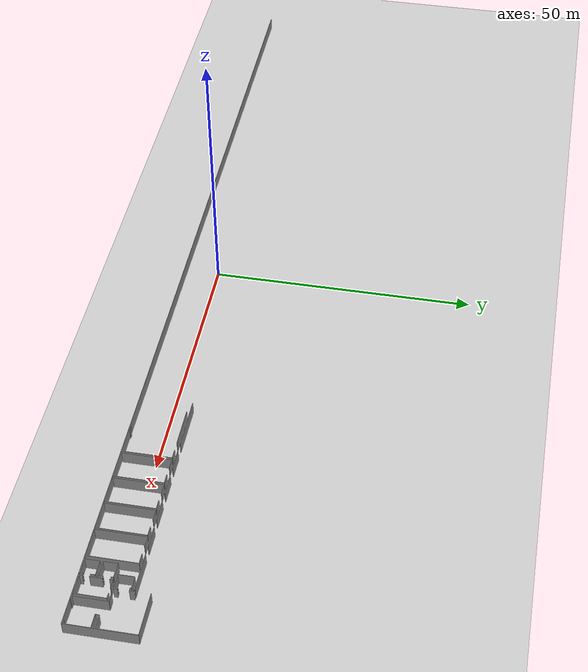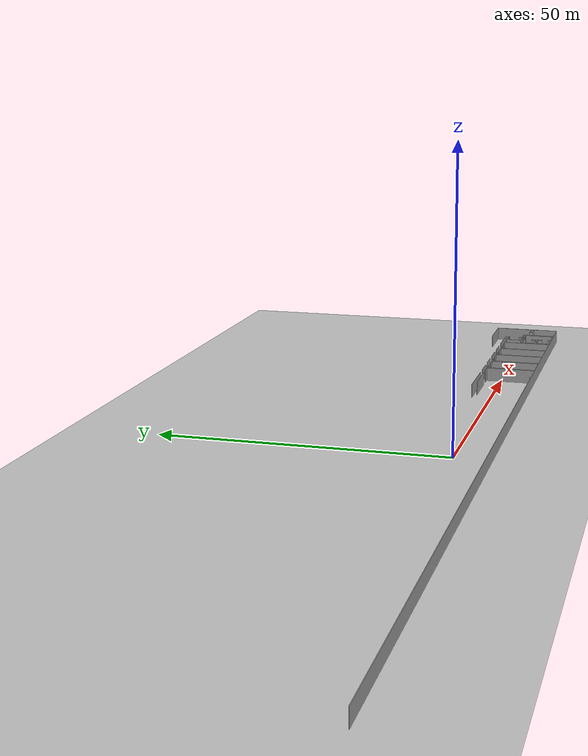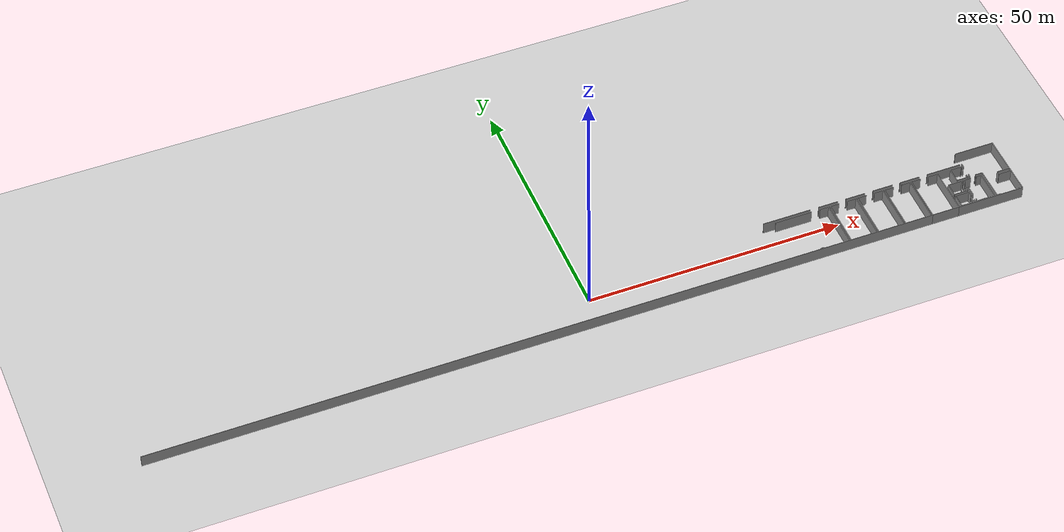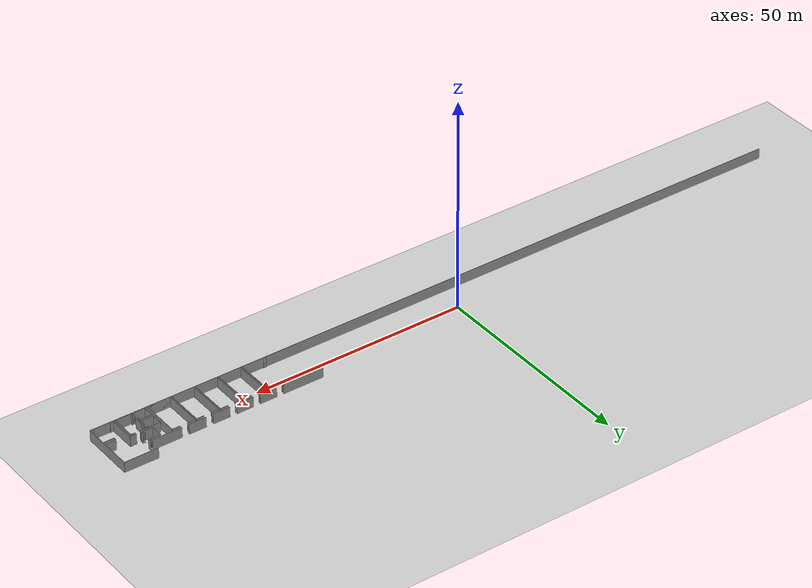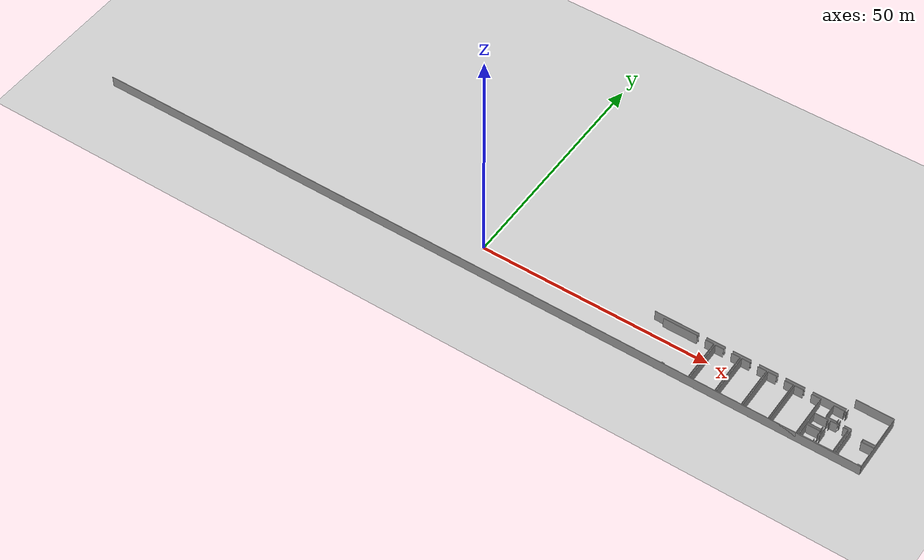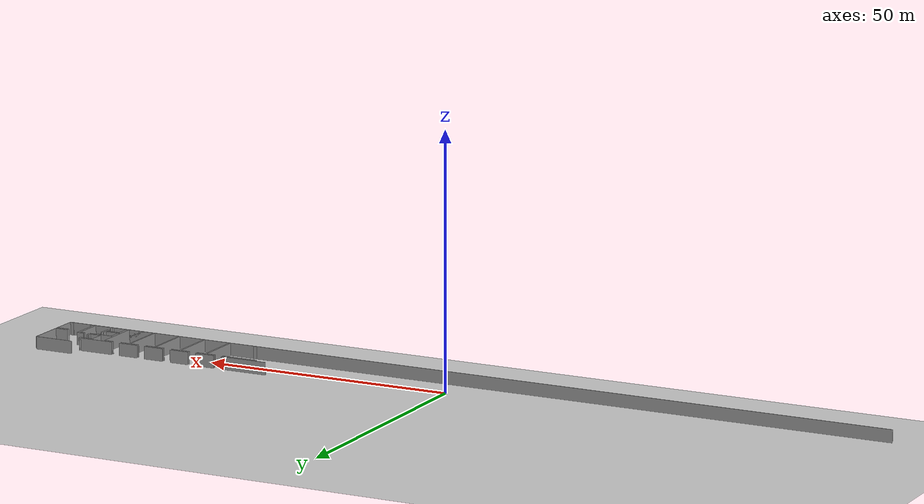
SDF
<sdf version="1.6">
 <world name="default">
  <model name="ground_plane">
   <static>1</static>
   <link name="link">
    <collision name="collision">
     <geometry><plane><normal>0 0 1</normal><size>100 100</size></plane></geometry>
     <surface><friction><ode><mu>100</mu><mu2>50</mu2></ode></friction></surface>
    </collision>
    <visual name="visual">
     <cast_shadows>0</cast_shadows>
     <geometry><plane><normal>0 0 1</normal><size>100 100</size></plane></geometry>
     <material>
      <script><uri>file://media/materials/scripts/gazebo.material</uri><name>Gazebo/Grey</name></script>
     </material>
    </visual>
   </link>
  </model>
  <model name="50015850_PLAN4">
   <static>1</static>
   <link name="Wall_1">
    <collision name="Wall_1_Collision">
     <geometry><box><size>6.89321743544 0.1 2.5</size></box></geometry>
     <pose>3.44660871772 0 1.25 0 0 0</pose>
    </collision>
    <visual name="Wall_1_Visual">
     <pose>3.44660871772 0 1.25 0 0 0</pose>
     <geometry><box><size>6.89321743544 0.1 2.5</size></box></geometry>
     <material>
      <script><uri>file://media/materials/scripts/gazebo.material</uri><name>Gazebo/Grey</name></script>
      <ambient>1 1 1 1</ambient>
     </material>
    </visual>
    <pose>163.584290337 -2.85164646913 0 0 0 3.14159265359</pose>
   </link>
   <link name="Wall_2">
    <collision name="Wall_2_Collision">
     <geometry><box><size>4.01091301313 0.1 2.5</size></box></geometry>
     <pose>2.00545650657 0 1.25 0 0 0</pose>
    </collision>
    <visual name="Wall_2_Visual">
     <pose>2.00545650657 0 1.25 0 0 0</pose>
     <geometry><box><size>4.01091301313 0.1 2.5</size></box></geometry>
     <material>
      <script><uri>file://media/materials/scripts/gazebo.material</uri><name>Gazebo/Grey</name></script>
      <ambient>1 1 1 1</ambient>
     </material>
    </visual>
    <pose>155.048029947 -2.85164646913 0 0 0 3.14159265359</pose>
   </link>
   <link name="Wall_3">
    <collision name="Wall_3_Collision">
     <geometry><box><size>4.02207981727 0.1 2.5</size></box></geometry>
     <pose>2.01103990864 0 1.25 0 0 0</pose>
    </collision>
    <visual name="Wall_3_Visual">
     <pose>2.01103990864 0 1.25 0 0 0</pose>
     <geometry><box><size>4.02207981727 0.1 2.5</size></box></geometry>
     <material>
      <script><uri>file://media/materials/scripts/gazebo.material</uri><name>Gazebo/Grey</name></script>
      <ambient>1 1 1 1</ambient>
     </material>
    </visual>
    <pose>149.47503331 -2.85164646913 0 0 0 3.14159265359</pose>
   </link>
   <link name="Wall_4">
    <collision name="Wall_4_Collision">
     <geometry><box><size>3.91777171499 0.1 2.5</size></box></geometry>
     <pose>1.9588858575 0 1.25 0 0 0</pose>
    </collision>
    <visual name="Wall_4_Visual">
     <pose>1.9588858575 0 1.25 0 0 0</pose>
     <geometry><box><size>3.91777171499 0.1 2.5</size></box></geometry>
     <material>
      <script><uri>file://media/materials/scripts/gazebo.material</uri><name>Gazebo/Grey</name></script>
      <ambient>1 1 1 1</ambient>
     </material>
    </visual>
    <pose>143.809910539 -2.85164646913 0 0 0 3.14159265359</pose>
   </link>
   <link name="Wall_5">
    <collision name="Wall_5_Collision">
     <geometry><box><size>3.98731044984 0.1 2.5</size></box></geometry>
     <pose>1.99365522492 0 1.25 0 0 0</pose>
    </collision>
    <visual name="Wall_5_Visual">
     <pose>1.99365522492 0 1.25 0 0 0</pose>
     <geometry><box><size>3.98731044984 0.1 2.5</size></box></geometry>
     <material>
      <script><uri>file://media/materials/scripts/gazebo.material</uri><name>Gazebo/Grey</name></script>
      <ambient>1 1 1 1</ambient>
     </material>
    </visual>
    <pose>138.268891568 -2.85164646913 0 0 0 3.14159265359</pose>
   </link>
   <link name="Wall_6">
    <collision name="Wall_6_Collision">
     <geometry><box><size>9.57705729332 0.1 2.5</size></box></geometry>
     <pose>4.78852864666 0 1.25 0 0 0</pose>
    </collision>
    <visual name="Wall_6_Visual">
     <pose>4.78852864666 0 1.25 0 0 0</pose>
     <geometry><box><size>9.57705729332 0.1 2.5</size></box></geometry>
     <material>
      <script><uri>file://media/materials/scripts/gazebo.material</uri><name>Gazebo/Grey</name></script>
      <ambient>1 1 1 1</ambient>
     </material>
    </visual>
    <pose>132.641329865 -2.85164646913 0 0 0 3.14159265359</pose>
   </link>
   <link name="Wall_131">
    <collision name="Wall_131_Collision">
     <geometry><box><size>0.672038576232 0.1 2.5</size></box></geometry>
     <pose>0.336019288116 0 1.25 0 0 0</pose>
    </collision>
    <visual name="Wall_131_Visual">
     <pose>0.336019288116 0 1.25 0 0 0</pose>
     <geometry><box><size>0.672038576232 0.1 2.5</size></box></geometry>
     <material>
      <script><uri>file://media/materials/scripts/gazebo.material</uri><name>Gazebo/Grey</name></script>
      <ambient>1 1 1 1</ambient>
     </material>
    </visual>
    <pose>131.001078612 -12.4412156589 0 0 0 3.14159265359</pose>
   </link>
   <link name="Wall_133">
    <collision name="Wall_133_Collision">
     <geometry><box><size>7.34166613794 0.1 2.5</size></box></geometry>
     <pose>3.67083306897 0 1.25 0 0 0</pose>
    </collision>
    <visual name="Wall_133_Visual">
     <pose>3.67083306897 0 1.25 0 0 0</pose>
     <geometry><box><size>7.34166613794 0.1 2.5</size></box></geometry>
     <material>
      <script><uri>file://media/materials/scripts/gazebo.material</uri><name>Gazebo/Grey</name></script>
      <ambient>1 1 1 1</ambient>
     </material>
    </visual>
    <pose>125.248905526 -3.4446799061 0 0 0 0.0</pose>
   </link>
   <link name="Wall_134">
    <collision name="Wall_134_Collision">
     <geometry><box><size>1.7554723685 0.1 2.5</size></box></geometry>
     <pose>0.877736184252 0 1.25 0 0 0</pose>
    </collision>
    <visual name="Wall_134_Visual">
     <pose>0.877736184252 0 1.25 0 0 0</pose>
     <geometry><box><size>1.7554723685 0.1 2.5</size></box></geometry>
     <material>
      <script><uri>file://media/materials/scripts/gazebo.material</uri><name>Gazebo/Grey</name></script>
      <ambient>1 1 1 1</ambient>
     </material>
    </visual>
    <pose>134.311782247 -3.4446799061 0 0 0 0.0</pose>
   </link>
   <link name="Wall_135">
    <collision name="Wall_135_Collision">
     <geometry><box><size>8.99655535525 0.1 2.5</size></box></geometry>
     <pose>4.49827767762 0 1.25 0 0 0</pose>
    </collision>
    <visual name="Wall_135_Visual">
     <pose>4.49827767762 0 1.25 0 0 0</pose>
     <geometry><box><size>8.99655535525 0.1 2.5</size></box></geometry>
     <material>
      <script><uri>file://media/materials/scripts/gazebo.material</uri><name>Gazebo/Grey</name></script>
      <ambient>1 1 1 1</ambient>
     </material>
    </visual>
    <pose>136.067254616 -3.4446799061 0 0 0 -1.56870880028</pose>
   </link>
   <link name="Wall_136">
    <collision name="Wall_136_Collision">
     <geometry><box><size>8.97059831229 0.1 2.5</size></box></geometry>
     <pose>4.48529915614 0 1.25 0 0 0</pose>
    </collision>
    <visual name="Wall_136_Visual">
     <pose>4.48529915614 0 1.25 0 0 0</pose>
     <geometry><box><size>8.97059831229 0.1 2.5</size></box></geometry>
     <material>
      <script><uri>file://media/materials/scripts/gazebo.material</uri><name>Gazebo/Grey</name></script>
      <ambient>1 1 1 1</ambient>
     </material>
    </visual>
    <pose>136.445149419 -12.4285261087 0 0 0 1.57079632679</pose>
   </link>
   <link name="Wall_137">
    <collision name="Wall_137_Collision">
     <geometry><box><size>1.76181714358 0.1 2.5</size></box></geometry>
     <pose>0.880908571791 0 1.25 0 0 0</pose>
    </collision>
    <visual name="Wall_137_Visual">
     <pose>0.880908571791 0 1.25 0 0 0</pose>
     <geometry><box><size>1.76181714358 0.1 2.5</size></box></geometry>
     <material>
      <script><uri>file://media/materials/scripts/gazebo.material</uri><name>Gazebo/Grey</name></script>
      <ambient>1 1 1 1</ambient>
     </material>
    </visual>
    <pose>136.445149419 -3.45792779646 0 0 0 0.0</pose>
   </link>
   <link name="Wall_138">
    <collision name="Wall_138_Collision">
     <geometry><box><size>1.78846519891 0.1 2.5</size></box></geometry>
     <pose>0.894232599454 0 1.25 0 0 0</pose>
    </collision>
    <visual name="Wall_138_Visual">
     <pose>0.894232599454 0 1.25 0 0 0</pose>
     <geometry><box><size>1.78846519891 0.1 2.5</size></box></geometry>
     <material>
      <script><uri>file://media/materials/scripts/gazebo.material</uri><name>Gazebo/Grey</name></script>
      <ambient>1 1 1 1</ambient>
     </material>
    </visual>
    <pose>139.885540258 -3.45792779646 0 0 0 0.0</pose>
   </link>
   <link name="Wall_139">
    <collision name="Wall_139_Collision">
     <geometry><box><size>8.97063865005 0.1 2.5</size></box></geometry>
     <pose>4.48531932503 0 1.25 0 0 0</pose>
    </collision>
    <visual name="Wall_139_Visual">
     <pose>4.48531932503 0 1.25 0 0 0</pose>
     <geometry><box><size>8.97063865005 0.1 2.5</size></box></geometry>
     <material>
      <script><uri>file://media/materials/scripts/gazebo.material</uri><name>Gazebo/Grey</name></script>
      <ambient>1 1 1 1</ambient>
     </material>
    </visual>
    <pose>141.674005457 -3.45792779646 0 0 0 -1.56779744481</pose>
   </link>
   <link name="Wall_140">
    <collision name="Wall_140_Collision">
     <geometry><box><size>8.98607956348 0.1 2.5</size></box></geometry>
     <pose>4.49303978174 0 1.25 0 0 0</pose>
    </collision>
    <visual name="Wall_140_Visual">
     <pose>4.49303978174 0 1.25 0 0 0</pose>
     <geometry><box><size>8.98607956348 0.1 2.5</size></box></geometry>
     <material>
      <script><uri>file://media/materials/scripts/gazebo.material</uri><name>Gazebo/Grey</name></script>
      <ambient>1 1 1 1</ambient>
     </material>
    </visual>
    <pose>142.064843601 -12.4313178098 0 0 0 1.57079632679</pose>
   </link>
   <link name="Wall_141">
    <collision name="Wall_141_Collision">
     <geometry><box><size>1.77069982869 0.1 2.5</size></box></geometry>
     <pose>0.885349914346 0 1.25 0 0 0</pose>
    </collision>
    <visual name="Wall_141_Visual">
     <pose>0.885349914346 0 1.25 0 0 0</pose>
     <geometry><box><size>1.77069982869 0.1 2.5</size></box></geometry>
     <material>
      <script><uri>file://media/materials/scripts/gazebo.material</uri><name>Gazebo/Grey</name></script>
      <ambient>1 1 1 1</ambient>
     </material>
    </visual>
    <pose>142.064843601 -3.4452382463 0 0 0 0.0</pose>
   </link>
   <link name="Wall_142">
    <collision name="Wall_142_Collision">
     <geometry><box><size>1.79937821204 0.1 2.5</size></box></geometry>
     <pose>0.899689106021 0 1.25 0 0 0</pose>
    </collision>
    <visual name="Wall_142_Visual">
     <pose>0.899689106021 0 1.25 0 0 0</pose>
     <geometry><box><size>1.79937821204 0.1 2.5</size></box></geometry>
     <material>
      <script><uri>file://media/materials/scripts/gazebo.material</uri><name>Gazebo/Grey</name></script>
      <ambient>1 1 1 1</ambient>
     </material>
    </visual>
    <pose>145.464120297 -3.4452382463 0 0 0 0.0</pose>
   </link>
   <link name="Wall_143">
    <collision name="Wall_143_Collision">
     <geometry><box><size>8.98608072465 0.1 2.5</size></box></geometry>
     <pose>4.49304036233 0 1.25 0 0 0</pose>
    </collision>
    <visual name="Wall_143_Visual">
     <pose>4.49304036233 0 1.25 0 0 0</pose>
     <geometry><box><size>8.98608072465 0.1 2.5</size></box></geometry>
     <material>
      <script><uri>file://media/materials/scripts/gazebo.material</uri><name>Gazebo/Grey</name></script>
      <ambient>1 1 1 1</ambient>
     </material>
    </visual>
    <pose>147.263498509 -3.4452382463 0 0 0 -1.57130469506</pose>
   </link>
   <link name="Wall_144">
    <collision name="Wall_144_Collision">
     <geometry><box><size>8.97326311782 0.1 2.5</size></box></geometry>
     <pose>4.48663155891 0 1.25 0 0 0</pose>
    </collision>
    <visual name="Wall_144_Visual">
     <pose>4.48663155891 0 1.25 0 0 0</pose>
     <geometry><box><size>8.97326311782 0.1 2.5</size></box></geometry>
     <material>
      <script><uri>file://media/materials/scripts/gazebo.material</uri><name>Gazebo/Grey</name></script>
      <ambient>1 1 1 1</ambient>
     </material>
    </visual>
    <pose>147.588858575 -12.4404542859 0 0 0 1.57079632679</pose>
   </link>
   <link name="Wall_145">
    <collision name="Wall_145_Collision">
     <geometry><box><size>1.84252268257 0.1 2.5</size></box></geometry>
     <pose>0.921261341285 0 1.25 0 0 0</pose>
    </collision>
    <visual name="Wall_145_Visual">
     <pose>0.921261341285 0 1.25 0 0 0</pose>
     <geometry><box><size>1.84252268257 0.1 2.5</size></box></geometry>
     <material>
      <script><uri>file://media/materials/scripts/gazebo.material</uri><name>Gazebo/Grey</name></script>
      <ambient>1 1 1 1</ambient>
     </material>
    </visual>
    <pose>147.588858575 -3.46719116807 0 0 0 0.0</pose>
   </link>
   <link name="Wall_146">
    <collision name="Wall_146_Collision">
     <geometry><box><size>1.78541970687 0.1 2.5</size></box></geometry>
     <pose>0.892709853436 0 1.25 0 0 0</pose>
    </collision>
    <visual name="Wall_146_Visual">
     <pose>0.892709853436 0 1.25 0 0 0</pose>
     <geometry><box><size>1.78541970687 0.1 2.5</size></box></geometry>
     <material>
      <script><uri>file://media/materials/scripts/gazebo.material</uri><name>Gazebo/Grey</name></script>
      <ambient>1 1 1 1</ambient>
     </material>
    </visual>
    <pose>151.102341222 -3.46719116807 0 0 0 0.0</pose>
   </link>
   <link name="Wall_147">
    <collision name="Wall_147_Collision">
     <geometry><box><size>8.97332100443 0.1 2.5</size></box></geometry>
     <pose>4.48666050221 0 1.25 0 0 0</pose>
    </collision>
    <visual name="Wall_147_Visual">
     <pose>4.48666050221 0 1.25 0 0 0</pose>
     <geometry><box><size>8.97332100443 0.1 2.5</size></box></geometry>
     <material>
      <script><uri>file://media/materials/scripts/gazebo.material</uri><name>Gazebo/Grey</name></script>
      <ambient>1 1 1 1</ambient>
     </material>
    </visual>
    <pose>152.887760929 -3.46719116807 0 0 0 -1.57438825521</pose>
   </link>
   <link name="Wall_148">
    <collision name="Wall_148_Collision">
     <geometry><box><size>5.42706681048 0.1 2.5</size></box></geometry>
     <pose>2.71353340524 0 1.25 0 0 0</pose>
    </collision>
    <visual name="Wall_148_Visual">
     <pose>2.71353340524 0 1.25 0 0 0</pose>
     <geometry><box><size>5.42706681048 0.1 2.5</size></box></geometry>
     <material>
      <script><uri>file://media/materials/scripts/gazebo.material</uri><name>Gazebo/Grey</name></script>
      <ambient>1 1 1 1</ambient>
     </material>
    </visual>
    <pose>158.581815875 -12.614047332 0 0 0 3.14159265359</pose>
   </link>
   <link name="Wall_149">
    <collision name="Wall_149_Collision">
     <geometry><box><size>9.17061100184 0.1 2.5</size></box></geometry>
     <pose>4.58530550092 0 1.25 0 0 0</pose>
    </collision>
    <visual name="Wall_149_Visual">
     <pose>4.58530550092 0 1.25 0 0 0</pose>
     <geometry><box><size>9.17061100184 0.1 2.5</size></box></geometry>
     <material>
      <script><uri>file://media/materials/scripts/gazebo.material</uri><name>Gazebo/Grey</name></script>
      <ambient>1 1 1 1</ambient>
     </material>
    </visual>
    <pose>153.154749064 -12.614047332 0 0 0 1.57079632679</pose>
   </link>
   <link name="Wall_150">
    <collision name="Wall_150_Collision">
     <geometry><box><size>1.88642852611 0.1 2.5</size></box></geometry>
     <pose>0.943214263054 0 1.25 0 0 0</pose>
    </collision>
    <visual name="Wall_150_Visual">
     <pose>0.943214263054 0 1.25 0 0 0</pose>
     <geometry><box><size>1.88642852611 0.1 2.5</size></box></geometry>
     <material>
      <script><uri>file://media/materials/scripts/gazebo.material</uri><name>Gazebo/Grey</name></script>
      <ambient>1 1 1 1</ambient>
     </material>
    </visual>
    <pose>153.154749064 -3.44343633018 0 0 0 0.0</pose>
   </link>
   <link name="Wall_151">
    <collision name="Wall_151_Collision">
     <geometry><box><size>1.92475096758 0.1 2.5</size></box></geometry>
     <pose>0.962375483789 0 1.25 0 0 0</pose>
    </collision>
    <visual name="Wall_151_Visual">
     <pose>0.962375483789 0 1.25 0 0 0</pose>
     <geometry><box><size>1.92475096758 0.1 2.5</size></box></geometry>
     <material>
      <script><uri>file://media/materials/scripts/gazebo.material</uri><name>Gazebo/Grey</name></script>
      <ambient>1 1 1 1</ambient>
     </material>
    </visual>
    <pose>156.676606814 -3.44343633018 0 0 0 0.0</pose>
   </link>
   <link name="Wall_152">
    <collision name="Wall_152_Collision">
     <geometry><box><size>9.17063182301 0.1 2.5</size></box></geometry>
     <pose>4.58531591151 0 1.25 0 0 0</pose>
    </collision>
    <visual name="Wall_152_Visual">
     <pose>4.58531591151 0 1.25 0 0 0</pose>
     <geometry><box><size>9.17063182301 0.1 2.5</size></box></geometry>
     <material>
      <script><uri>file://media/materials/scripts/gazebo.material</uri><name>Gazebo/Grey</name></script>
      <ambient>1 1 1 1</ambient>
     </material>
    </visual>
    <pose>158.601357782 -3.44343633018 0 0 0 -1.57292725108</pose>
   </link>
   <link name="Wall_153">
    <collision name="Wall_153_Collision">
     <geometry><box><size>0.740054565066 0.1 2.5</size></box></geometry>
     <pose>0.370027282533 0 1.25 0 0 0</pose>
    </collision>
    <visual name="Wall_153_Visual">
     <pose>0.370027282533 0 1.25 0 0 0</pose>
     <geometry><box><size>0.740054565066 0.1 2.5</size></box></geometry>
     <material>
      <script><uri>file://media/materials/scripts/gazebo.material</uri><name>Gazebo/Grey</name></script>
      <ambient>1 1 1 1</ambient>
     </material>
    </visual>
    <pose>171.801027854 -12.4691326692 0 0 0 3.14159265359</pose>
   </link>
   <link name="Wall_154">
    <collision name="Wall_154_Collision">
     <geometry><box><size>0.772793604467 0.1 2.5</size></box></geometry>
     <pose>0.386396802233 0 1.25 0 0 0</pose>
    </collision>
    <visual name="Wall_154_Visual">
     <pose>0.386396802233 0 1.25 0 0 0</pose>
     <geometry><box><size>0.772793604467 0.1 2.5</size></box></geometry>
     <material>
      <script><uri>file://media/materials/scripts/gazebo.material</uri><name>Gazebo/Grey</name></script>
      <ambient>1 1 1 1</ambient>
     </material>
    </visual>
    <pose>167.290907937 -12.4691326692 0 0 0 3.14159265359</pose>
   </link>
   <link name="Wall_155">
    <collision name="Wall_155_Collision">
     <geometry><box><size>6.16019288116 0.1 2.5</size></box></geometry>
     <pose>3.08009644058 0 1.25 0 0 0</pose>
    </collision>
    <visual name="Wall_155_Visual">
     <pose>3.08009644058 0 1.25 0 0 0</pose>
     <geometry><box><size>6.16019288116 0.1 2.5</size></box></geometry>
     <material>
      <script><uri>file://media/materials/scripts/gazebo.material</uri><name>Gazebo/Grey</name></script>
      <ambient>1 1 1 1</ambient>
     </material>
    </visual>
    <pose>166.518114333 -12.4691326692 0 0 0 1.57079632679</pose>
   </link>
   <link name="Wall_156">
    <collision name="Wall_156_Collision">
     <geometry><box><size>1.4613285959 0.1 2.5</size></box></geometry>
     <pose>0.730664297951 0 1.25 0 0 0</pose>
    </collision>
    <visual name="Wall_156_Visual">
     <pose>0.730664297951 0 1.25 0 0 0</pose>
     <geometry><box><size>1.4613285959 0.1 2.5</size></box></geometry>
     <material>
      <script><uri>file://media/materials/scripts/gazebo.material</uri><name>Gazebo/Grey</name></script>
      <ambient>1 1 1 1</ambient>
     </material>
    </visual>
    <pose>166.518114333 -6.30893978808 0 0 0 3.14159265359</pose>
   </link>
   <link name="Wall_157">
    <collision name="Wall_157_Collision">
     <geometry><box><size>0.642573440772 0.1 2.5</size></box></geometry>
     <pose>0.321286720386 0 1.25 0 0 0</pose>
    </collision>
    <visual name="Wall_157_Visual">
     <pose>0.321286720386 0 1.25 0 0 0</pose>
     <geometry><box><size>0.642573440772 0.1 2.5</size></box></geometry>
     <material>
      <script><uri>file://media/materials/scripts/gazebo.material</uri><name>Gazebo/Grey</name></script>
      <ambient>1 1 1 1</ambient>
     </material>
    </visual>
    <pose>163.951779709 -6.30893978808 0 0 0 1.57079632679</pose>
   </link>
   <link name="Wall_158">
    <collision name="Wall_158_Collision">
     <geometry><box><size>0.822917327581 0.1 2.5</size></box></geometry>
     <pose>0.41145866379 0 1.25 0 0 0</pose>
    </collision>
    <visual name="Wall_158_Visual">
     <pose>0.41145866379 0 1.25 0 0 0</pose>
     <geometry><box><size>0.822917327581 0.1 2.5</size></box></geometry>
     <material>
      <script><uri>file://media/materials/scripts/gazebo.material</uri><name>Gazebo/Grey</name></script>
      <ambient>1 1 1 1</ambient>
     </material>
    </visual>
    <pose>163.951779709 -3.67565509803 0 0 0 1.57079632679</pose>
   </link>
   <link name="Wall_159">
    <collision name="Wall_159_Collision">
     <geometry><box><size>7.82970623691 0.1 2.5</size></box></geometry>
     <pose>3.91485311846 0 1.25 0 0 0</pose>
    </collision>
    <visual name="Wall_159_Visual">
     <pose>3.91485311846 0 1.25 0 0 0</pose>
     <geometry><box><size>7.82970623691 0.1 2.5</size></box></geometry>
     <material>
      <script><uri>file://media/materials/scripts/gazebo.material</uri><name>Gazebo/Grey</name></script>
      <ambient>1 1 1 1</ambient>
     </material>
    </visual>
    <pose>163.951779709 -0.0219529217689 0 0 0 0.0</pose>
   </link>
   <link name="Wall_160">
    <collision name="Wall_160_Collision">
     <geometry><box><size>7.11977666392 0.1 2.5</size></box></geometry>
     <pose>3.55988833196 0 1.25 0 0 0</pose>
    </collision>
    <visual name="Wall_160_Visual">
     <pose>3.55988833196 0 1.25 0 0 0</pose>
     <geometry><box><size>7.11977666392 0.1 2.5</size></box></geometry>
     <material>
      <script><uri>file://media/materials/scripts/gazebo.material</uri><name>Gazebo/Grey</name></script>
      <ambient>1 1 1 1</ambient>
     </material>
    </visual>
    <pose>171.781485946 -0.0219529217689 0 0 0 -1.57079632679</pose>
   </link>
   <link name="Wall_161">
    <collision name="Wall_161_Collision">
     <geometry><box><size>2.52496668993 0.1 2.5</size></box></geometry>
     <pose>1.26248334497 0 1.25 0 0 0</pose>
    </collision>
    <visual name="Wall_161_Visual">
     <pose>1.26248334497 0 1.25 0 0 0</pose>
     <geometry><box><size>2.52496668993 0.1 2.5</size></box></geometry>
     <material>
      <script><uri>file://media/materials/scripts/gazebo.material</uri><name>Gazebo/Grey</name></script>
      <ambient>1 1 1 1</ambient>
     </material>
    </visual>
    <pose>171.781485946 -7.14172958569 0 0 0 3.14159265359</pose>
   </link>
   <link name="Wall_162">
    <collision name="Wall_162_Collision">
     <geometry><box><size>0.661810798807 0.1 2.5</size></box></geometry>
     <pose>0.330905399404 0 1.25 0 0 0</pose>
    </collision>
    <visual name="Wall_162_Visual">
     <pose>0.330905399404 0 1.25 0 0 0</pose>
     <geometry><box><size>0.661810798807 0.1 2.5</size></box></geometry>
     <material>
      <script><uri>file://media/materials/scripts/gazebo.material</uri><name>Gazebo/Grey</name></script>
      <ambient>1 1 1 1</ambient>
     </material>
    </visual>
    <pose>169.256519256 -7.14172958569 0 0 0 -1.57079632679</pose>
   </link>
   <link name="Wall_163">
    <collision name="Wall_163_Collision">
     <geometry><box><size>2.55694435632 0.1 2.5</size></box></geometry>
     <pose>1.27847217816 0 1.25 0 0 0</pose>
    </collision>
    <visual name="Wall_163_Visual">
     <pose>1.27847217816 0 1.25 0 0 0</pose>
     <geometry><box><size>2.55694435632 0.1 2.5</size></box></geometry>
     <material>
      <script><uri>file://media/materials/scripts/gazebo.material</uri><name>Gazebo/Grey</name></script>
      <ambient>1 1 1 1</ambient>
     </material>
    </visual>
    <pose>169.256519256 -7.80354038449 0 0 0 0.0</pose>
   </link>
   <link name="Wall_164">
    <collision name="Wall_164_Collision">
     <geometry><box><size>4.66560885798 0.1 2.5</size></box></geometry>
     <pose>2.33280442899 0 1.25 0 0 0</pose>
    </collision>
    <visual name="Wall_164_Visual">
     <pose>2.33280442899 0 1.25 0 0 0</pose>
     <geometry><box><size>4.66560885798 0.1 2.5</size></box></geometry>
     <material>
      <script><uri>file://media/materials/scripts/gazebo.material</uri><name>Gazebo/Grey</name></script>
      <ambient>1 1 1 1</ambient>
     </material>
    </visual>
    <pose>171.813463613 -7.80354038449 0 0 0 -1.57346173966</pose>
   </link>
   <link name="Wall_165">
    <collision name="Wall_165_Collision">
     <geometry><box><size>2.26026267369 0.1 2.5</size></box></geometry>
     <pose>1.13013133684 0 1.25 0 0 0</pose>
    </collision>
    <visual name="Wall_165_Visual">
     <pose>1.13013133684 0 1.25 0 0 0</pose>
     <geometry><box><size>2.26026267369 0.1 2.5</size></box></geometry>
     <material>
      <script><uri>file://media/materials/scripts/gazebo.material</uri><name>Gazebo/Grey</name></script>
      <ambient>1 1 1 1</ambient>
     </material>
    </visual>
    <pose>163.541399657 -6.31992893852 0 0 0 3.14159265359</pose>
   </link>
   <link name="Wall_166">
    <collision name="Wall_166_Collision">
     <geometry><box><size>2.87469069221 0.1 2.5</size></box></geometry>
     <pose>1.43734534611 0 1.25 0 0 0</pose>
    </collision>
    <visual name="Wall_166_Visual">
     <pose>1.43734534611 0 1.25 0 0 0</pose>
     <geometry><box><size>2.87469069221 0.1 2.5</size></box></geometry>
     <material>
      <script><uri>file://media/materials/scripts/gazebo.material</uri><name>Gazebo/Grey</name></script>
      <ambient>1 1 1 1</ambient>
     </material>
    </visual>
    <pose>161.281136984 -6.31992893852 0 0 0 1.57079632679</pose>
   </link>
   <link name="Wall_167">
    <collision name="Wall_167_Collision">
     <geometry><box><size>2.24934966055 0.1 2.5</size></box></geometry>
     <pose>1.12467483028 0 1.25 0 0 0</pose>
    </collision>
    <visual name="Wall_167_Visual">
     <pose>1.12467483028 0 1.25 0 0 0</pose>
     <geometry><box><size>2.24934966055 0.1 2.5</size></box></geometry>
     <material>
      <script><uri>file://media/materials/scripts/gazebo.material</uri><name>Gazebo/Grey</name></script>
      <ambient>1 1 1 1</ambient>
     </material>
    </visual>
    <pose>161.281136984 -3.4452382463 0 0 0 0.0</pose>
   </link>
   <link name="Wall_168">
    <collision name="Wall_168_Collision">
     <geometry><box><size>0.263333544826 0.1 2.5</size></box></geometry>
     <pose>0.131666772413 0 1.25 0 0 0</pose>
    </collision>
    <visual name="Wall_168_Visual">
     <pose>0.131666772413 0 1.25 0 0 0</pose>
     <geometry><box><size>0.263333544826 0.1 2.5</size></box></geometry>
     <material>
      <script><uri>file://media/materials/scripts/gazebo.material</uri><name>Gazebo/Grey</name></script>
      <ambient>1 1 1 1</ambient>
     </material>
    </visual>
    <pose>163.530486644 -3.4452382463 0 0 0 -1.57079632679</pose>
   </link>
   <link name="Wall_169">
    <collision name="Wall_169_Collision">
     <geometry><box><size>0.669386596765 0.1 2.5</size></box></geometry>
     <pose>0.334693298383 0 1.25 0 0 0</pose>
    </collision>
    <visual name="Wall_169_Visual">
     <pose>0.334693298383 0 1.25 0 0 0</pose>
     <geometry><box><size>0.669386596765 0.1 2.5</size></box></geometry>
     <material>
      <script><uri>file://media/materials/scripts/gazebo.material</uri><name>Gazebo/Grey</name></script>
      <ambient>1 1 1 1</ambient>
     </material>
    </visual>
    <pose>163.530486644 -5.65063130512 0 0 0 -1.55449259937</pose>
   </link>
   <link name="Wall_170">
    <collision name="Wall_170_Collision">
     <geometry><box><size>3.58784341095 0.1 2.5</size></box></geometry>
     <pose>1.79392170548 0 1.25 0 0 0</pose>
    </collision>
    <visual name="Wall_170_Visual">
     <pose>1.79392170548 0 1.25 0 0 0</pose>
     <geometry><box><size>3.58784341095 0.1 2.5</size></box></geometry>
     <material>
      <script><uri>file://media/materials/scripts/gazebo.material</uri><name>Gazebo/Grey</name></script>
      <ambient>1 1 1 1</ambient>
     </material>
    </visual>
    <pose>166.021191549 -12.4643106402 0 0 0 3.14159265359</pose>
   </link>
   <link name="Wall_171">
    <collision name="Wall_171_Collision">
     <geometry><box><size>0.548696148722 0.1 2.5</size></box></geometry>
     <pose>0.274348074361 0 1.25 0 0 0</pose>
    </collision>
    <visual name="Wall_171_Visual">
     <pose>0.274348074361 0 1.25 0 0 0</pose>
     <geometry><box><size>0.548696148722 0.1 2.5</size></box></geometry>
     <material>
      <script><uri>file://media/materials/scripts/gazebo.material</uri><name>Gazebo/Grey</name></script>
      <ambient>1 1 1 1</ambient>
     </material>
    </visual>
    <pose>162.433348138 -12.4643106402 0 0 0 1.57079632679</pose>
   </link>
   <link name="Wall_172">
    <collision name="Wall_172_Collision">
     <geometry><box><size>2.21635683015 0.1 2.5</size></box></geometry>
     <pose>1.10817841508 0 1.25 0 0 0</pose>
    </collision>
    <visual name="Wall_172_Visual">
     <pose>1.10817841508 0 1.25 0 0 0</pose>
     <geometry><box><size>2.21635683015 0.1 2.5</size></box></geometry>
     <material>
      <script><uri>file://media/materials/scripts/gazebo.material</uri><name>Gazebo/Grey</name></script>
      <ambient>1 1 1 1</ambient>
     </material>
    </visual>
    <pose>162.433348138 -10.7416788275 0 0 0 1.57079632679</pose>
   </link>
   <link name="Wall_173">
    <collision name="Wall_173_Collision">
     <geometry><box><size>0.567806611256 0.1 2.5</size></box></geometry>
     <pose>0.283903305628 0 1.25 0 0 0</pose>
    </collision>
    <visual name="Wall_173_Visual">
     <pose>0.283903305628 0 1.25 0 0 0</pose>
     <geometry><box><size>0.567806611256 0.1 2.5</size></box></geometry>
     <material>
      <script><uri>file://media/materials/scripts/gazebo.material</uri><name>Gazebo/Grey</name></script>
      <ambient>1 1 1 1</ambient>
     </material>
    </visual>
    <pose>162.433348138 -7.35623374151 0 0 0 1.57079632679</pose>
   </link>
   <link name="Wall_174">
    <collision name="Wall_174_Collision">
     <geometry><box><size>1.47503331007 0.1 2.5</size></box></geometry>
     <pose>0.737516655035 0 1.25 0 0 0</pose>
    </collision>
    <visual name="Wall_174_Visual">
     <pose>0.737516655035 0 1.25 0 0 0</pose>
     <geometry><box><size>1.47503331007 0.1 2.5</size></box></geometry>
     <material>
      <script><uri>file://media/materials/scripts/gazebo.material</uri><name>Gazebo/Grey</name></script>
      <ambient>1 1 1 1</ambient>
     </material>
    </visual>
    <pose>162.433348138 -6.78842713026 0 0 0 0.0</pose>
   </link>
   <link name="Wall_175">
    <collision name="Wall_175_Collision">
     <geometry><box><size>1.00958061037 0.1 2.5</size></box></geometry>
     <pose>0.504790305184 0 1.25 0 0 0</pose>
    </collision>
    <visual name="Wall_175_Visual">
     <pose>0.504790305184 0 1.25 0 0 0</pose>
     <geometry><box><size>1.00958061037 0.1 2.5</size></box></geometry>
     <material>
      <script><uri>file://media/materials/scripts/gazebo.material</uri><name>Gazebo/Grey</name></script>
      <ambient>1 1 1 1</ambient>
     </material>
    </visual>
    <pose>165.031406637 -6.78842713026 0 0 0 0.0</pose>
   </link>
   <link name="Wall_176">
    <collision name="Wall_176_Collision">
     <geometry><box><size>5.67591803041 0.1 2.5</size></box></geometry>
     <pose>2.83795901521 0 1.25 0 0 0</pose>
    </collision>
    <visual name="Wall_176_Visual">
     <pose>2.83795901521 0 1.25 0 0 0</pose>
     <geometry><box><size>5.67591803041 0.1 2.5</size></box></geometry>
     <material>
      <script><uri>file://media/materials/scripts/gazebo.material</uri><name>Gazebo/Grey</name></script>
      <ambient>1 1 1 1</ambient>
     </material>
    </visual>
    <pose>166.040987247 -6.78842713026 0 0 0 -1.57428399844</pose>
   </link>
   <link name="Wall_177">
    <collision name="Wall_177_Collision">
     <geometry><box><size>2.79550789924 0.1 2.5</size></box></geometry>
     <pose>1.39775394962 0 1.25 0 0 0</pose>
    </collision>
    <visual name="Wall_177_Visual">
     <pose>1.39775394962 0 1.25 0 0 0</pose>
     <geometry><box><size>2.79550789924 0.1 2.5</size></box></geometry>
     <material>
      <script><uri>file://media/materials/scripts/gazebo.material</uri><name>Gazebo/Grey</name></script>
      <ambient>1 1 1 1</ambient>
     </material>
    </visual>
    <pose>161.976778123 -9.39686568111 0 0 0 3.14159265359</pose>
   </link>
   <link name="Wall_178">
    <collision name="Wall_178_Collision">
     <geometry><box><size>2.57884651989 0.1 2.5</size></box></geometry>
     <pose>1.28942325995 0 1.25 0 0 0</pose>
    </collision>
    <visual name="Wall_178_Visual">
     <pose>1.28942325995 0 1.25 0 0 0</pose>
     <geometry><box><size>2.57884651989 0.1 2.5</size></box></geometry>
     <material>
      <script><uri>file://media/materials/scripts/gazebo.material</uri><name>Gazebo/Grey</name></script>
      <ambient>1 1 1 1</ambient>
     </material>
    </visual>
    <pose>159.181270224 -9.39686568111 0 0 0 1.57079632679</pose>
   </link>
   <link name="Wall_179">
    <collision name="Wall_179_Collision">
     <geometry><box><size>2.79246240721 0.1 2.5</size></box></geometry>
     <pose>1.3962312036 0 1.25 0 0 0</pose>
    </collision>
    <visual name="Wall_179_Visual">
     <pose>1.3962312036 0 1.25 0 0 0</pose>
     <geometry><box><size>2.79246240721 0.1 2.5</size></box></geometry>
     <material>
      <script><uri>file://media/materials/scripts/gazebo.material</uri><name>Gazebo/Grey</name></script>
      <ambient>1 1 1 1</ambient>
     </material>
    </visual>
    <pose>159.181270224 -6.81801916122 0 0 0 0.0</pose>
   </link>
   <link name="Wall_180">
    <collision name="Wall_180_Collision">
     <geometry><box><size>0.489309053994 0.1 2.5</size></box></geometry>
     <pose>0.244654526997 0 1.25 0 0 0</pose>
    </collision>
    <visual name="Wall_180_Visual">
     <pose>0.244654526997 0 1.25 0 0 0</pose>
     <geometry><box><size>0.489309053994 0.1 2.5</size></box></geometry>
     <material>
      <script><uri>file://media/materials/scripts/gazebo.material</uri><name>Gazebo/Grey</name></script>
      <ambient>1 1 1 1</ambient>
     </material>
    </visual>
    <pose>161.973732631 -6.81801916122 0 0 0 -1.57079632679</pose>
   </link>
   <link name="Wall_181">
    <collision name="Wall_181_Collision">
     <geometry><box><size>0.860585301246 0.1 2.5</size></box></geometry>
     <pose>0.430292650623 0 1.25 0 0 0</pose>
    </collision>
    <visual name="Wall_181_Visual">
     <pose>0.430292650623 0 1.25 0 0 0</pose>
     <geometry><box><size>0.860585301246 0.1 2.5</size></box></geometry>
     <material>
      <script><uri>file://media/materials/scripts/gazebo.material</uri><name>Gazebo/Grey</name></script>
      <ambient>1 1 1 1</ambient>
     </material>
    </visual>
    <pose>161.973732631 -8.53628576867 0 0 0 -1.56725745809</pose>
   </link>
   <link name="Wall_182">
    <collision name="Wall_182_Collision">
     <geometry><box><size>2.80109130131 0.1 2.5</size></box></geometry>
     <pose>1.40054565066 0 1.25 0 0 0</pose>
    </collision>
    <visual name="Wall_182_Visual">
     <pose>1.40054565066 0 1.25 0 0 0</pose>
     <geometry><box><size>2.80109130131 0.1 2.5</size></box></geometry>
     <material>
      <script><uri>file://media/materials/scripts/gazebo.material</uri><name>Gazebo/Grey</name></script>
      <ambient>1 1 1 1</ambient>
     </material>
    </visual>
    <pose>162.003172388 -12.4917200685 0 0 0 3.14159265359</pose>
   </link>
   <link name="Wall_183">
    <collision name="Wall_183_Collision">
     <geometry><box><size>2.6371423133 0.1 2.5</size></box></geometry>
     <pose>1.31857115665 0 1.25 0 0 0</pose>
    </collision>
    <visual name="Wall_183_Visual">
     <pose>1.31857115665 0 1.25 0 0 0</pose>
     <geometry><box><size>2.6371423133 0.1 2.5</size></box></geometry>
     <material>
      <script><uri>file://media/materials/scripts/gazebo.material</uri><name>Gazebo/Grey</name></script>
      <ambient>1 1 1 1</ambient>
     </material>
    </visual>
    <pose>159.202081086 -12.4917200685 0 0 0 1.57079632679</pose>
   </link>
   <link name="Wall_184">
    <collision name="Wall_184_Collision">
     <geometry><box><size>2.80109130131 0.1 2.5</size></box></geometry>
     <pose>1.40054565066 0 1.25 0 0 0</pose>
    </collision>
    <visual name="Wall_184_Visual">
     <pose>1.40054565066 0 1.25 0 0 0</pose>
     <geometry><box><size>2.80109130131 0.1 2.5</size></box></geometry>
     <material>
      <script><uri>file://media/materials/scripts/gazebo.material</uri><name>Gazebo/Grey</name></script>
      <ambient>1 1 1 1</ambient>
     </material>
    </visual>
    <pose>159.202081086 -9.85457775522 0 0 0 0.0</pose>
   </link>
   <link name="Wall_185">
    <collision name="Wall_185_Collision">
     <geometry><box><size>0.870630036165 0.1 2.5</size></box></geometry>
     <pose>0.435315018083 0 1.25 0 0 0</pose>
    </collision>
    <visual name="Wall_185_Visual">
     <pose>0.435315018083 0 1.25 0 0 0</pose>
     <geometry><box><size>0.870630036165 0.1 2.5</size></box></geometry>
     <material>
      <script><uri>file://media/materials/scripts/gazebo.material</uri><name>Gazebo/Grey</name></script>
      <ambient>1 1 1 1</ambient>
     </material>
    </visual>
    <pose>162.003172388 -9.85457775522 0 0 0 -1.57079632679</pose>
   </link>
   <link name="Wall_186">
    <collision name="Wall_186_Collision">
     <geometry><box><size>0.576105577057 0.1 2.5</size></box></geometry>
     <pose>0.288052788529 0 1.25 0 0 0</pose>
    </collision>
    <visual name="Wall_186_Visual">
     <pose>0.288052788529 0 1.25 0 0 0</pose>
     <geometry><box><size>0.576105577057 0.1 2.5</size></box></geometry>
     <material>
      <script><uri>file://media/materials/scripts/gazebo.material</uri><name>Gazebo/Grey</name></script>
      <ambient>1 1 1 1</ambient>
     </material>
    </visual>
    <pose>162.003172388 -11.9156144915 0 0 0 -1.57079632679</pose>
   </link>
   <link name="Wall_187">
    <collision name="Wall_187_Collision">
     <geometry><box><size>12.614047332 0.1 2.5</size></box></geometry>
     <pose>6.30702366601 0 1.25 0 0 0</pose>
    </collision>
    <visual name="Wall_187_Visual">
     <pose>6.30702366601 0 1.25 0 0 0</pose>
     <geometry><box><size>12.614047332 0.1 2.5</size></box></geometry>
     <material>
      <script><uri>file://media/materials/scripts/gazebo.material</uri><name>Gazebo/Grey</name></script>
      <ambient>1 1 1 1</ambient>
     </material>
    </visual>
    <pose>171.813463613 -12.614047332 0 0 0 1.57079632679</pose>
   </link>
   <link name="Wall_188">
    <collision name="Wall_188_Collision">
     <geometry><box><size>171.813463613 0.1 2.5</size></box></geometry>
     <pose>85.9067318064 0 1.25 0 0 0</pose>
    </collision>
    <visual name="Wall_188_Visual">
     <pose>85.9067318064 0 1.25 0 0 0</pose>
     <geometry><box><size>171.813463613 0.1 2.5</size></box></geometry>
     <material>
      <script><uri>file://media/materials/scripts/gazebo.material</uri><name>Gazebo/Grey</name></script>
      <ambient>1 1 1 1</ambient>
     </material>
    </visual>
    <pose>171.813463613 -12.614047332 0 0 0 3.14159265359</pose>
   </link>
   <pose>-86.8 6.31404733202 0 0 0 0</pose>
  </model>
 </world>
</sdf>
